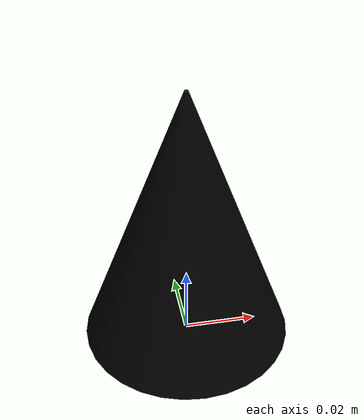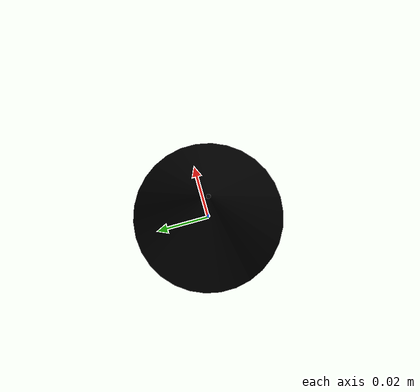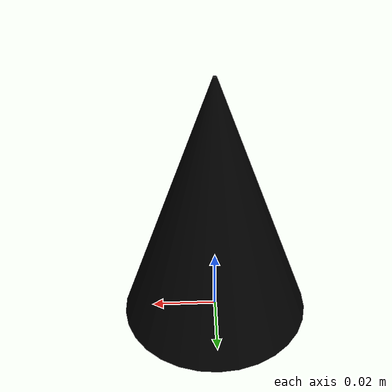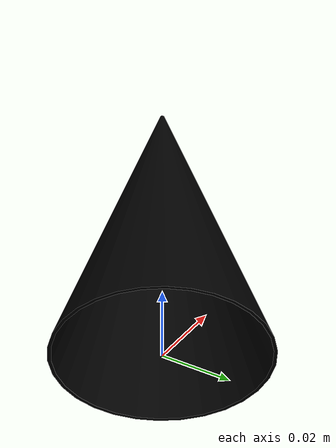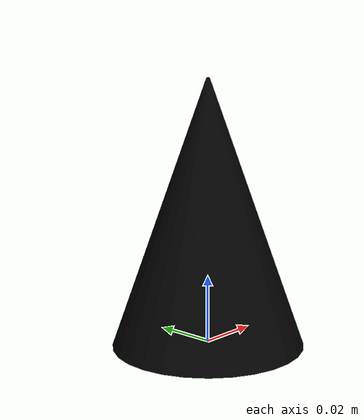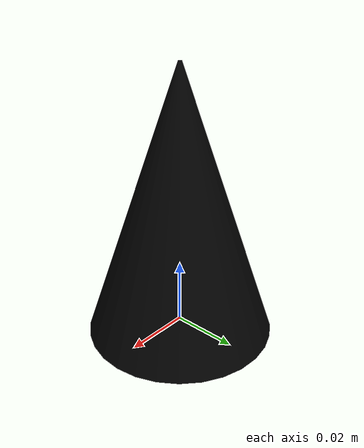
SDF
<?xml version="1.0" ?>
<sdf version="1.6">
  <model name="mini_cone">
    <static>true</static>

    <link name="link">
      <collision name="collision">
        <geometry>
          <mesh>
            <uri>model://autocone_description/urdf/mini_cone.dae</uri>
          </mesh>
        </geometry>
        <surface>
            <contact>
              <collide_without_contact>true</collide_without_contact>
            </contact>
          </surface>

      </collision>

      <visual name="visual">
        <cast_shadows>true</cast_shadows>
        <material>
          <ambient>0 0 0 1</ambient>
          <diffuse>0 0 0 1</diffuse>
          <specular>0 0 0.1 1</specular>
          <emissive>1 1 0 0</emissive>
        </material>
        <geometry>
          <mesh>
            <uri>model://autocone_description/urdf/mini_cone.dae</uri>
          </mesh>
        </geometry>
      </visual>
    </link>
  </model>
</sdf>
